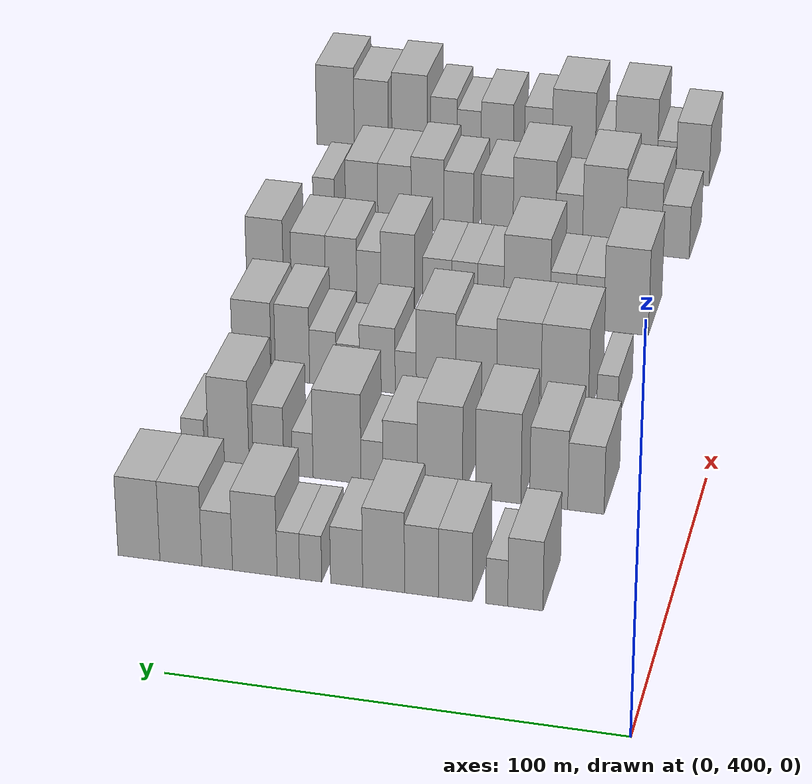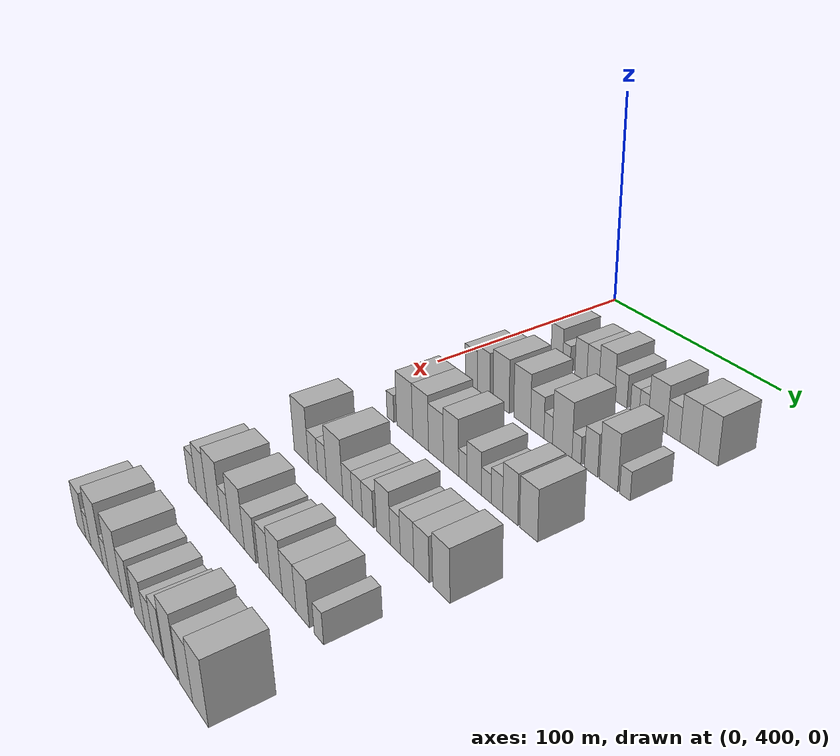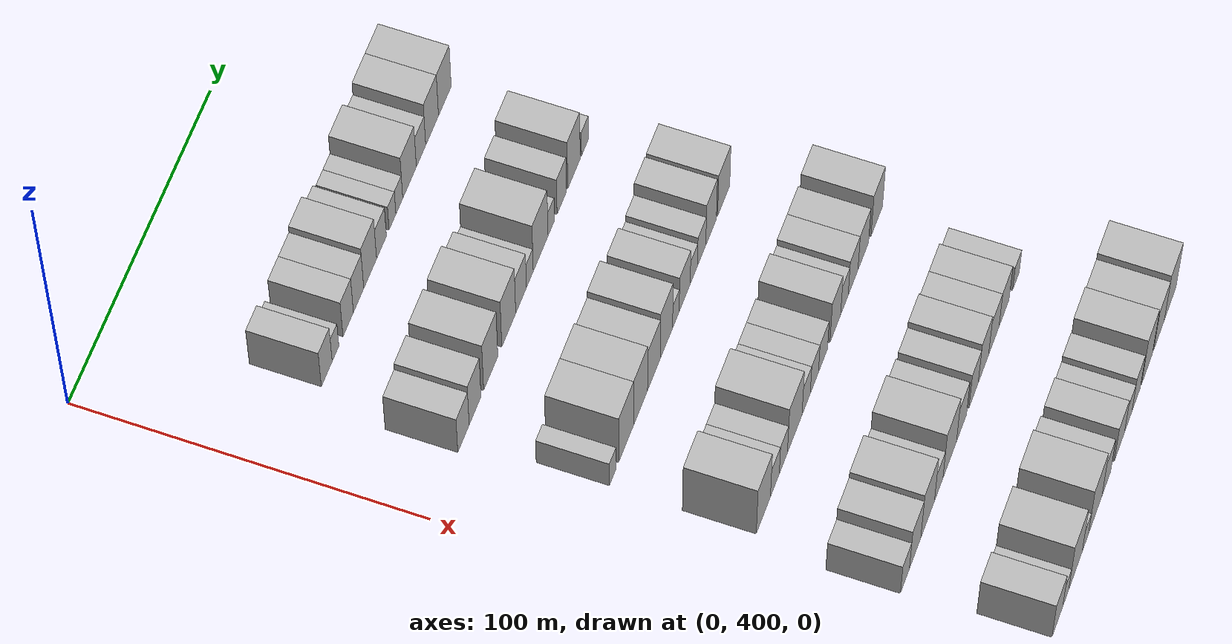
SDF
<sdf version="1.6">
 <world name="default">
  <model name="building_108">
   <static>1</static>
   <pose>50.0000 430.3907 0 0.000000 0.000000 0.000000</pose>
   <link name="link">
    <pose>0 0 9.00 0 0 0</pose>
    <collision name="collision"><geometry><box><size>20.0000 7.8006 18.0000</size></box></geometry></collision>
    <visual name="visual">
     <cast_shadows>0</cast_shadows>
     <geometry><box><size>20.0000 7.8006 18.0000</size></box></geometry>
     <material>
      <script>
       <uri>model://HANNAS_wall/materials/scripts</uri>
       <uri>model://HANNAS_wall/materials/textures</uri>
       <name>vrc/HANNAS_wall</name>
      </script>
     </material>
    </visual>
   </link>
  </model>
  <model name="building_109">
   <static>1</static>
   <pose>50.0000 436.7287 0 0.000000 0.000000 0.000000</pose>
   <link name="link">
    <pose>0 0 6.00 0 0 0</pose>
    <collision name="collision"><geometry><box><size>20.0000 4.8754 12.0000</size></box></geometry></collision>
    <visual name="visual">
     <cast_shadows>0</cast_shadows>
     <geometry><box><size>20.0000 4.8754 12.0000</size></box></geometry>
     <material>
      <script>
       <uri>model://HANNAS_wall/materials/scripts</uri>
       <uri>model://HANNAS_wall/materials/textures</uri>
       <name>vrc/HANNAS_wall</name>
      </script>
     </material>
    </visual>
   </link>
  </model>
  <model name="building_110">
   <static>1</static>
   <pose>50.0000 445.9561 0 0.000000 0.000000 0.000000</pose>
   <link name="link">
    <pose>0 0 9.00 0 0 0</pose>
    <collision name="collision"><geometry><box><size>20.0000 7.5793 18.0000</size></box></geometry></collision>
    <visual name="visual">
     <cast_shadows>0</cast_shadows>
     <geometry><box><size>20.0000 7.5793 18.0000</size></box></geometry>
     <material>
      <script>
       <uri>model://HANNAS_wall/materials/scripts</uri>
       <uri>model://HANNAS_wall/materials/textures</uri>
       <name>vrc/HANNAS_wall</name>
      </script>
     </material>
    </visual>
   </link>
  </model>
  <model name="building_111">
   <static>1</static>
   <pose>50.0000 453.5369 0 0.000000 0.000000 0.000000</pose>
   <link name="link">
    <pose>0 0 9.00 0 0 0</pose>
    <collision name="collision"><geometry><box><size>20.0000 7.5823 18.0000</size></box></geometry></collision>
    <visual name="visual">
     <cast_shadows>0</cast_shadows>
     <geometry><box><size>20.0000 7.5823 18.0000</size></box></geometry>
     <material>
      <script>
       <uri>model://HANNAS_wall/materials/scripts</uri>
       <uri>model://HANNAS_wall/materials/textures</uri>
       <name>vrc/HANNAS_wall</name>
      </script>
     </material>
    </visual>
   </link>
  </model>
  <model name="building_112">
   <static>1</static>
   <pose>50.0000 462.0447 0 0.000000 0.000000 0.000000</pose>
   <link name="link">
    <pose>0 0 10.50 0 0 0</pose>
    <collision name="collision"><geometry><box><size>20.0000 9.4333 21.0000</size></box></geometry></collision>
    <visual name="visual">
     <cast_shadows>0</cast_shadows>
     <geometry><box><size>20.0000 9.4333 21.0000</size></box></geometry>
     <material>
      <script>
       <uri>model://HANNAS_wall/materials/scripts</uri>
       <uri>model://HANNAS_wall/materials/textures</uri>
       <name>vrc/HANNAS_wall</name>
      </script>
     </material>
    </visual>
   </link>
  </model>
  <model name="building_113">
   <static>1</static>
   <pose>50.0000 470.3872 0 0.000000 0.000000 0.000000</pose>
   <link name="link">
    <pose>0 0 7.50 0 0 0</pose>
    <collision name="collision"><geometry><box><size>20.0000 7.2516 15.0000</size></box></geometry></collision>
    <visual name="visual">
     <cast_shadows>0</cast_shadows>
     <geometry><box><size>20.0000 7.2516 15.0000</size></box></geometry>
     <material>
      <script>
       <uri>model://HANNAS_wall/materials/scripts</uri>
       <uri>model://HANNAS_wall/materials/textures</uri>
       <name>vrc/HANNAS_wall</name>
      </script>
     </material>
    </visual>
   </link>
  </model>
  <model name="building_114">
   <static>1</static>
   <pose>50.0000 478.5228 0 0.000000 0.000000 0.000000</pose>
   <link name="link">
    <pose>0 0 6.00 0 0 0</pose>
    <collision name="collision"><geometry><box><size>20.0000 5.0196 12.0000</size></box></geometry></collision>
    <visual name="visual">
     <cast_shadows>0</cast_shadows>
     <geometry><box><size>20.0000 5.0196 12.0000</size></box></geometry>
     <material>
      <script>
       <uri>model://HANNAS_wall/materials/scripts</uri>
       <uri>model://HANNAS_wall/materials/textures</uri>
       <name>vrc/HANNAS_wall</name>
      </script>
     </material>
    </visual>
   </link>
  </model>
  <model name="building_115">
   <static>1</static>
   <pose>50.0000 483.6006 0 0.000000 0.000000 0.000000</pose>
   <link name="link">
    <pose>0 0 6.00 0 0 0</pose>
    <collision name="collision"><geometry><box><size>20.0000 5.1360 12.0000</size></box></geometry></collision>
    <visual name="visual">
     <cast_shadows>0</cast_shadows>
     <geometry><box><size>20.0000 5.1360 12.0000</size></box></geometry>
     <material>
      <script>
       <uri>model://HANNAS_wall/materials/scripts</uri>
       <uri>model://HANNAS_wall/materials/textures</uri>
       <name>vrc/HANNAS_wall</name>
      </script>
     </material>
    </visual>
   </link>
  </model>
  <model name="building_116">
   <static>1</static>
   <pose>50.0000 491.2625 0 0.000000 0.000000 0.000000</pose>
   <link name="link">
    <pose>0 0 10.50 0 0 0</pose>
    <collision name="collision"><geometry><box><size>20.0000 10.1878 21.0000</size></box></geometry></collision>
    <visual name="visual">
     <cast_shadows>0</cast_shadows>
     <geometry><box><size>20.0000 10.1878 21.0000</size></box></geometry>
     <material>
      <script>
       <uri>model://HANNAS_wall/materials/scripts</uri>
       <uri>model://HANNAS_wall/materials/textures</uri>
       <name>vrc/HANNAS_wall</name>
      </script>
     </material>
    </visual>
   </link>
  </model>
  <model name="building_117">
   <static>1</static>
   <pose>50.0000 499.8749 0 0.000000 0.000000 0.000000</pose>
   <link name="link">
    <pose>0 0 7.50 0 0 0</pose>
    <collision name="collision"><geometry><box><size>20.0000 7.0372 15.0000</size></box></geometry></collision>
    <visual name="visual">
     <cast_shadows>0</cast_shadows>
     <geometry><box><size>20.0000 7.0372 15.0000</size></box></geometry>
     <material>
      <script>
       <uri>model://HANNAS_wall/materials/scripts</uri>
       <uri>model://HANNAS_wall/materials/textures</uri>
       <name>vrc/HANNAS_wall</name>
      </script>
     </material>
    </visual>
   </link>
  </model>
  <model name="building_118">
   <static>1</static>
   <pose>50.0000 508.2300 0 0.000000 0.000000 0.000000</pose>
   <link name="link">
    <pose>0 0 10.50 0 0 0</pose>
    <collision name="collision"><geometry><box><size>20.0000 9.6730 21.0000</size></box></geometry></collision>
    <visual name="visual">
     <cast_shadows>0</cast_shadows>
     <geometry><box><size>20.0000 9.6730 21.0000</size></box></geometry>
     <material>
      <script>
       <uri>model://HANNAS_wall/materials/scripts</uri>
       <uri>model://HANNAS_wall/materials/textures</uri>
       <name>vrc/HANNAS_wall</name>
      </script>
     </material>
    </visual>
   </link>
  </model>
  <model name="building_119">
   <static>1</static>
   <pose>50.0000 517.9013 0 0.000000 0.000000 0.000000</pose>
   <link name="link">
    <pose>0 0 10.50 0 0 0</pose>
    <collision name="collision"><geometry><box><size>20.0000 9.6695 21.0000</size></box></geometry></collision>
    <visual name="visual">
     <cast_shadows>0</cast_shadows>
     <geometry><box><size>20.0000 9.6695 21.0000</size></box></geometry>
     <material>
      <script>
       <uri>model://HANNAS_wall/materials/scripts</uri>
       <uri>model://HANNAS_wall/materials/textures</uri>
       <name>vrc/HANNAS_wall</name>
      </script>
     </material>
    </visual>
   </link>
  </model>
  <model name="building_246">
   <static>1</static>
   <pose>90.0000 424.5598 0 0.000000 0.000000 0.000000</pose>
   <link name="link">
    <pose>0 0 9.00 0 0 0</pose>
    <collision name="collision"><geometry><box><size>20.0000 8.3779 18.0000</size></box></geometry></collision>
    <visual name="visual">
     <cast_shadows>0</cast_shadows>
     <geometry><box><size>20.0000 8.3779 18.0000</size></box></geometry>
     <material>
      <script>
       <uri>model://HANNAS_wall/materials/scripts</uri>
       <uri>model://HANNAS_wall/materials/textures</uri>
       <name>vrc/HANNAS_wall</name>
      </script>
     </material>
    </visual>
   </link>
  </model>
  <model name="building_247">
   <static>1</static>
   <pose>90.0000 433.1530 0 0.000000 0.000000 0.000000</pose>
   <link name="link">
    <pose>0 0 10.50 0 0 0</pose>
    <collision name="collision"><geometry><box><size>20.0000 8.8085 21.0000</size></box></geometry></collision>
    <visual name="visual">
     <cast_shadows>0</cast_shadows>
     <geometry><box><size>20.0000 8.8085 21.0000</size></box></geometry>
     <material>
      <script>
       <uri>model://HANNAS_wall/materials/scripts</uri>
       <uri>model://HANNAS_wall/materials/textures</uri>
       <name>vrc/HANNAS_wall</name>
      </script>
     </material>
    </visual>
   </link>
  </model>
  <model name="building_248">
   <static>1</static>
   <pose>90.0000 444.8565 0 0.000000 0.000000 0.000000</pose>
   <link name="link">
    <pose>0 0 12.00 0 0 0</pose>
    <collision name="collision"><geometry><box><size>20.0000 10.5984 24.0000</size></box></geometry></collision>
    <visual name="visual">
     <cast_shadows>0</cast_shadows>
     <geometry><box><size>20.0000 10.5984 24.0000</size></box></geometry>
     <material>
      <script>
       <uri>model://HANNAS_wall/materials/scripts</uri>
       <uri>model://HANNAS_wall/materials/textures</uri>
       <name>vrc/HANNAS_wall</name>
      </script>
     </material>
    </visual>
   </link>
  </model>
  <model name="building_249">
   <static>1</static>
   <pose>90.0000 458.4073 0 0.000000 0.000000 0.000000</pose>
   <link name="link">
    <pose>0 0 12.00 0 0 0</pose>
    <collision name="collision"><geometry><box><size>20.0000 10.5032 24.0000</size></box></geometry></collision>
    <visual name="visual">
     <cast_shadows>0</cast_shadows>
     <geometry><box><size>20.0000 10.5032 24.0000</size></box></geometry>
     <material>
      <script>
       <uri>model://HANNAS_wall/materials/scripts</uri>
       <uri>model://HANNAS_wall/materials/textures</uri>
       <name>vrc/HANNAS_wall</name>
      </script>
     </material>
    </visual>
   </link>
  </model>
  <model name="building_250">
   <static>1</static>
   <pose>90.0000 467.7437 0 0.000000 0.000000 0.000000</pose>
   <link name="link">
    <pose>0 0 9.00 0 0 0</pose>
    <collision name="collision"><geometry><box><size>20.0000 8.1696 18.0000</size></box></geometry></collision>
    <visual name="visual">
     <cast_shadows>0</cast_shadows>
     <geometry><box><size>20.0000 8.1696 18.0000</size></box></geometry>
     <material>
      <script>
       <uri>model://HANNAS_wall/materials/scripts</uri>
       <uri>model://HANNAS_wall/materials/textures</uri>
       <name>vrc/HANNAS_wall</name>
      </script>
     </material>
    </visual>
   </link>
  </model>
  <model name="building_251">
   <static>1</static>
   <pose>90.0000 474.4030 0 0.000000 0.000000 0.000000</pose>
   <link name="link">
    <pose>0 0 6.00 0 0 0</pose>
    <collision name="collision"><geometry><box><size>20.0000 5.1491 12.0000</size></box></geometry></collision>
    <visual name="visual">
     <cast_shadows>0</cast_shadows>
     <geometry><box><size>20.0000 5.1491 12.0000</size></box></geometry>
     <material>
      <script>
       <uri>model://HANNAS_wall/materials/scripts</uri>
       <uri>model://HANNAS_wall/materials/textures</uri>
       <name>vrc/HANNAS_wall</name>
      </script>
     </material>
    </visual>
   </link>
  </model>
  <model name="building_252">
   <static>1</static>
   <pose>90.0000 482.6559 0 0.000000 0.000000 0.000000</pose>
   <link name="link">
    <pose>0 0 12.00 0 0 0</pose>
    <collision name="collision"><geometry><box><size>20.0000 11.3567 24.0000</size></box></geometry></collision>
    <visual name="visual">
     <cast_shadows>0</cast_shadows>
     <geometry><box><size>20.0000 11.3567 24.0000</size></box></geometry>
     <material>
      <script>
       <uri>model://HANNAS_wall/materials/scripts</uri>
       <uri>model://HANNAS_wall/materials/textures</uri>
       <name>vrc/HANNAS_wall</name>
      </script>
     </material>
    </visual>
   </link>
  </model>
  <model name="building_253">
   <static>1</static>
   <pose>90.0000 490.8058 0 0.000000 0.000000 0.000000</pose>
   <link name="link">
    <pose>0 0 6.00 0 0 0</pose>
    <collision name="collision"><geometry><box><size>20.0000 4.9433 12.0000</size></box></geometry></collision>
    <visual name="visual">
     <cast_shadows>0</cast_shadows>
     <geometry><box><size>20.0000 4.9433 12.0000</size></box></geometry>
     <material>
      <script>
       <uri>model://HANNAS_wall/materials/scripts</uri>
       <uri>model://HANNAS_wall/materials/textures</uri>
       <name>vrc/HANNAS_wall</name>
      </script>
     </material>
    </visual>
   </link>
  </model>
  <model name="building_254">
   <static>1</static>
   <pose>90.0000 498.9172 0 0.000000 0.000000 0.000000</pose>
   <link name="link">
    <pose>0 0 9.00 0 0 0</pose>
    <collision name="collision"><geometry><box><size>20.0000 7.2795 18.0000</size></box></geometry></collision>
    <visual name="visual">
     <cast_shadows>0</cast_shadows>
     <geometry><box><size>20.0000 7.2795 18.0000</size></box></geometry>
     <material>
      <script>
       <uri>model://HANNAS_wall/materials/scripts</uri>
       <uri>model://HANNAS_wall/materials/textures</uri>
       <name>vrc/HANNAS_wall</name>
      </script>
     </material>
    </visual>
   </link>
  </model>
  <model name="building_255">
   <static>1</static>
   <pose>90.0000 508.4036 0 0.000000 0.000000 0.000000</pose>
   <link name="link">
    <pose>0 0 12.00 0 0 0</pose>
    <collision name="collision"><geometry><box><size>20.0000 9.6932 24.0000</size></box></geometry></collision>
    <visual name="visual">
     <cast_shadows>0</cast_shadows>
     <geometry><box><size>20.0000 9.6932 24.0000</size></box></geometry>
     <material>
      <script>
       <uri>model://HANNAS_wall/materials/scripts</uri>
       <uri>model://HANNAS_wall/materials/textures</uri>
       <name>vrc/HANNAS_wall</name>
      </script>
     </material>
    </visual>
   </link>
  </model>
  <model name="building_256">
   <static>1</static>
   <pose>90.0000 516.9651 0 0.000000 0.000000 0.000000</pose>
   <link name="link">
    <pose>0 0 6.00 0 0 0</pose>
    <collision name="collision"><geometry><box><size>20.0000 5.4298 12.0000</size></box></geometry></collision>
    <visual name="visual">
     <cast_shadows>0</cast_shadows>
     <geometry><box><size>20.0000 5.4298 12.0000</size></box></geometry>
     <material>
      <script>
       <uri>model://HANNAS_wall/materials/scripts</uri>
       <uri>model://HANNAS_wall/materials/textures</uri>
       <name>vrc/HANNAS_wall</name>
      </script>
     </material>
    </visual>
   </link>
  </model>
  <model name="building_387">
   <static>1</static>
   <pose>130.0000 426.9914 0 0.000000 0.000000 0.000000</pose>
   <link name="link">
    <pose>0 0 6.00 0 0 0</pose>
    <collision name="collision"><geometry><box><size>20.0000 5.0914 12.0000</size></box></geometry></collision>
    <visual name="visual">
     <cast_shadows>0</cast_shadows>
     <geometry><box><size>20.0000 5.0914 12.0000</size></box></geometry>
     <material>
      <script>
       <uri>model://HANNAS_wall/materials/scripts</uri>
       <uri>model://HANNAS_wall/materials/textures</uri>
       <name>vrc/HANNAS_wall</name>
      </script>
     </material>
    </visual>
   </link>
  </model>
  <model name="building_388">
   <static>1</static>
   <pose>130.0000 437.2520 0 0.000000 0.000000 0.000000</pose>
   <link name="link">
    <pose>0 0 12.00 0 0 0</pose>
    <collision name="collision"><geometry><box><size>20.0000 11.4298 24.0000</size></box></geometry></collision>
    <visual name="visual">
     <cast_shadows>0</cast_shadows>
     <geometry><box><size>20.0000 11.4298 24.0000</size></box></geometry>
     <material>
      <script>
       <uri>model://HANNAS_wall/materials/scripts</uri>
       <uri>model://HANNAS_wall/materials/textures</uri>
       <name>vrc/HANNAS_wall</name>
      </script>
     </material>
    </visual>
   </link>
  </model>
  <model name="building_389">
   <static>1</static>
   <pose>130.0000 448.3407 0 0.000000 0.000000 0.000000</pose>
   <link name="link">
    <pose>0 0 12.00 0 0 0</pose>
    <collision name="collision"><geometry><box><size>20.0000 10.7475 24.0000</size></box></geometry></collision>
    <visual name="visual">
     <cast_shadows>0</cast_shadows>
     <geometry><box><size>20.0000 10.7475 24.0000</size></box></geometry>
     <material>
      <script>
       <uri>model://HANNAS_wall/materials/scripts</uri>
       <uri>model://HANNAS_wall/materials/textures</uri>
       <name>vrc/HANNAS_wall</name>
      </script>
     </material>
    </visual>
   </link>
  </model>
  <model name="building_390">
   <static>1</static>
   <pose>130.0000 458.6576 0 0.000000 0.000000 0.000000</pose>
   <link name="link">
    <pose>0 0 10.50 0 0 0</pose>
    <collision name="collision"><geometry><box><size>20.0000 9.8865 21.0000</size></box></geometry></collision>
    <visual name="visual">
     <cast_shadows>0</cast_shadows>
     <geometry><box><size>20.0000 9.8865 21.0000</size></box></geometry>
     <material>
      <script>
       <uri>model://HANNAS_wall/materials/scripts</uri>
       <uri>model://HANNAS_wall/materials/textures</uri>
       <name>vrc/HANNAS_wall</name>
      </script>
     </material>
    </visual>
   </link>
  </model>
  <model name="building_391">
   <static>1</static>
   <pose>130.0000 468.4294 0 0.000000 0.000000 0.000000</pose>
   <link name="link">
    <pose>0 0 12.00 0 0 0</pose>
    <collision name="collision"><geometry><box><size>20.0000 9.6571 24.0000</size></box></geometry></collision>
    <visual name="visual">
     <cast_shadows>0</cast_shadows>
     <geometry><box><size>20.0000 9.6571 24.0000</size></box></geometry>
     <material>
      <script>
       <uri>model://HANNAS_wall/materials/scripts</uri>
       <uri>model://HANNAS_wall/materials/textures</uri>
       <name>vrc/HANNAS_wall</name>
      </script>
     </material>
    </visual>
   </link>
  </model>
  <model name="building_392">
   <static>1</static>
   <pose>130.0000 475.8567 0 0.000000 0.000000 0.000000</pose>
   <link name="link">
    <pose>0 0 6.00 0 0 0</pose>
    <collision name="collision"><geometry><box><size>20.0000 5.1975 12.0000</size></box></geometry></collision>
    <visual name="visual">
     <cast_shadows>0</cast_shadows>
     <geometry><box><size>20.0000 5.1975 12.0000</size></box></geometry>
     <material>
      <script>
       <uri>model://HANNAS_wall/materials/scripts</uri>
       <uri>model://HANNAS_wall/materials/textures</uri>
       <name>vrc/HANNAS_wall</name>
      </script>
     </material>
    </visual>
   </link>
  </model>
  <model name="building_393">
   <static>1</static>
   <pose>130.0000 482.8201 0 0.000000 0.000000 0.000000</pose>
   <link name="link">
    <pose>0 0 9.00 0 0 0</pose>
    <collision name="collision"><geometry><box><size>20.0000 8.7292 18.0000</size></box></geometry></collision>
    <visual name="visual">
     <cast_shadows>0</cast_shadows>
     <geometry><box><size>20.0000 8.7292 18.0000</size></box></geometry>
     <material>
      <script>
       <uri>model://HANNAS_wall/materials/scripts</uri>
       <uri>model://HANNAS_wall/materials/textures</uri>
       <name>vrc/HANNAS_wall</name>
      </script>
     </material>
    </visual>
   </link>
  </model>
  <model name="building_394">
   <static>1</static>
   <pose>130.0000 490.0511 0 0.000000 0.000000 0.000000</pose>
   <link name="link">
    <pose>0 0 6.00 0 0 0</pose>
    <collision name="collision"><geometry><box><size>20.0000 5.7328 12.0000</size></box></geometry></collision>
    <visual name="visual">
     <cast_shadows>0</cast_shadows>
     <geometry><box><size>20.0000 5.7328 12.0000</size></box></geometry>
     <material>
      <script>
       <uri>model://HANNAS_wall/materials/scripts</uri>
       <uri>model://HANNAS_wall/materials/textures</uri>
       <name>vrc/HANNAS_wall</name>
      </script>
     </material>
    </visual>
   </link>
  </model>
  <model name="building_395">
   <static>1</static>
   <pose>130.0000 496.2345 0 0.000000 0.000000 0.000000</pose>
   <link name="link">
    <pose>0 0 7.50 0 0 0</pose>
    <collision name="collision"><geometry><box><size>20.0000 6.6340 15.0000</size></box></geometry></collision>
    <visual name="visual">
     <cast_shadows>0</cast_shadows>
     <geometry><box><size>20.0000 6.6340 15.0000</size></box></geometry>
     <material>
      <script>
       <uri>model://HANNAS_wall/materials/scripts</uri>
       <uri>model://HANNAS_wall/materials/textures</uri>
       <name>vrc/HANNAS_wall</name>
      </script>
     </material>
    </visual>
   </link>
  </model>
  <model name="building_396">
   <static>1</static>
   <pose>130.0000 503.7884 0 0.000000 0.000000 0.000000</pose>
   <link name="link">
    <pose>0 0 10.50 0 0 0</pose>
    <collision name="collision"><geometry><box><size>20.0000 8.4738 21.0000</size></box></geometry></collision>
    <visual name="visual">
     <cast_shadows>0</cast_shadows>
     <geometry><box><size>20.0000 8.4738 21.0000</size></box></geometry>
     <material>
      <script>
       <uri>model://HANNAS_wall/materials/scripts</uri>
       <uri>model://HANNAS_wall/materials/textures</uri>
       <name>vrc/HANNAS_wall</name>
      </script>
     </material>
    </visual>
   </link>
  </model>
  <model name="building_397">
   <static>1</static>
   <pose>130.0000 513.8648 0 0.000000 0.000000 0.000000</pose>
   <link name="link">
    <pose>0 0 10.50 0 0 0</pose>
    <collision name="collision"><geometry><box><size>20.0000 9.6791 21.0000</size></box></geometry></collision>
    <visual name="visual">
     <cast_shadows>0</cast_shadows>
     <geometry><box><size>20.0000 9.6791 21.0000</size></box></geometry>
     <material>
      <script>
       <uri>model://HANNAS_wall/materials/scripts</uri>
       <uri>model://HANNAS_wall/materials/textures</uri>
       <name>vrc/HANNAS_wall</name>
      </script>
     </material>
    </visual>
   </link>
  </model>
  <model name="building_525">
   <static>1</static>
   <pose>170.0000 429.5735 0 0.000000 0.000000 0.000000</pose>
   <link name="link">
    <pose>0 0 12.00 0 0 0</pose>
    <collision name="collision"><geometry><box><size>20.0000 11.1415 24.0000</size></box></geometry></collision>
    <visual name="visual">
     <cast_shadows>0</cast_shadows>
     <geometry><box><size>20.0000 11.1415 24.0000</size></box></geometry>
     <material>
      <script>
       <uri>model://HANNAS_wall/materials/scripts</uri>
       <uri>model://HANNAS_wall/materials/textures</uri>
       <name>vrc/HANNAS_wall</name>
      </script>
     </material>
    </visual>
   </link>
  </model>
  <model name="building_526">
   <static>1</static>
   <pose>170.0000 438.6558 0 0.000000 0.000000 0.000000</pose>
   <link name="link">
    <pose>0 0 7.50 0 0 0</pose>
    <collision name="collision"><geometry><box><size>20.0000 7.0231 15.0000</size></box></geometry></collision>
    <visual name="visual">
     <cast_shadows>0</cast_shadows>
     <geometry><box><size>20.0000 7.0231 15.0000</size></box></geometry>
     <material>
      <script>
       <uri>model://HANNAS_wall/materials/scripts</uri>
       <uri>model://HANNAS_wall/materials/textures</uri>
       <name>vrc/HANNAS_wall</name>
      </script>
     </material>
    </visual>
   </link>
  </model>
  <model name="building_527">
   <static>1</static>
   <pose>170.0000 445.3950 0 0.000000 0.000000 0.000000</pose>
   <link name="link">
    <pose>0 0 7.50 0 0 0</pose>
    <collision name="collision"><geometry><box><size>20.0000 6.4554 15.0000</size></box></geometry></collision>
    <visual name="visual">
     <cast_shadows>0</cast_shadows>
     <geometry><box><size>20.0000 6.4554 15.0000</size></box></geometry>
     <material>
      <script>
       <uri>model://HANNAS_wall/materials/scripts</uri>
       <uri>model://HANNAS_wall/materials/textures</uri>
       <name>vrc/HANNAS_wall</name>
      </script>
     </material>
    </visual>
   </link>
  </model>
  <model name="building_528">
   <static>1</static>
   <pose>170.0000 454.4798 0 0.000000 0.000000 0.000000</pose>
   <link name="link">
    <pose>0 0 12.00 0 0 0</pose>
    <collision name="collision"><geometry><box><size>20.0000 11.7142 24.0000</size></box></geometry></collision>
    <visual name="visual">
     <cast_shadows>0</cast_shadows>
     <geometry><box><size>20.0000 11.7142 24.0000</size></box></geometry>
     <material>
      <script>
       <uri>model://HANNAS_wall/materials/scripts</uri>
       <uri>model://HANNAS_wall/materials/textures</uri>
       <name>vrc/HANNAS_wall</name>
      </script>
     </material>
    </visual>
   </link>
  </model>
  <model name="building_529">
   <static>1</static>
   <pose>170.0000 463.6392 0 0.000000 0.000000 0.000000</pose>
   <link name="link">
    <pose>0 0 7.50 0 0 0</pose>
    <collision name="collision"><geometry><box><size>20.0000 6.6045 15.0000</size></box></geometry></collision>
    <visual name="visual">
     <cast_shadows>0</cast_shadows>
     <geometry><box><size>20.0000 6.6045 15.0000</size></box></geometry>
     <material>
      <script>
       <uri>model://HANNAS_wall/materials/scripts</uri>
       <uri>model://HANNAS_wall/materials/textures</uri>
       <name>vrc/HANNAS_wall</name>
      </script>
     </material>
    </visual>
   </link>
  </model>
  <model name="building_530">
   <static>1</static>
   <pose>170.0000 470.2667 0 0.000000 0.000000 0.000000</pose>
   <link name="link">
    <pose>0 0 7.50 0 0 0</pose>
    <collision name="collision"><geometry><box><size>20.0000 6.6507 15.0000</size></box></geometry></collision>
    <visual name="visual">
     <cast_shadows>0</cast_shadows>
     <geometry><box><size>20.0000 6.6507 15.0000</size></box></geometry>
     <material>
      <script>
       <uri>model://HANNAS_wall/materials/scripts</uri>
       <uri>model://HANNAS_wall/materials/textures</uri>
       <name>vrc/HANNAS_wall</name>
      </script>
     </material>
    </visual>
   </link>
  </model>
  <model name="building_531">
   <static>1</static>
   <pose>170.0000 477.2610 0 0.000000 0.000000 0.000000</pose>
   <link name="link">
    <pose>0 0 7.50 0 0 0</pose>
    <collision name="collision"><geometry><box><size>20.0000 7.3378 15.0000</size></box></geometry></collision>
    <visual name="visual">
     <cast_shadows>0</cast_shadows>
     <geometry><box><size>20.0000 7.3378 15.0000</size></box></geometry>
     <material>
      <script>
       <uri>model://HANNAS_wall/materials/scripts</uri>
       <uri>model://HANNAS_wall/materials/textures</uri>
       <name>vrc/HANNAS_wall</name>
      </script>
     </material>
    </visual>
   </link>
  </model>
  <model name="building_532">
   <static>1</static>
   <pose>170.0000 487.2739 0 0.000000 0.000000 0.000000</pose>
   <link name="link">
    <pose>0 0 10.50 0 0 0</pose>
    <collision name="collision"><geometry><box><size>20.0000 8.6882 21.0000</size></box></geometry></collision>
    <visual name="visual">
     <cast_shadows>0</cast_shadows>
     <geometry><box><size>20.0000 8.6882 21.0000</size></box></geometry>
     <material>
      <script>
       <uri>model://HANNAS_wall/materials/scripts</uri>
       <uri>model://HANNAS_wall/materials/textures</uri>
       <name>vrc/HANNAS_wall</name>
      </script>
     </material>
    </visual>
   </link>
  </model>
  <model name="building_533">
   <static>1</static>
   <pose>170.0000 494.7062 0 0.000000 0.000000 0.000000</pose>
   <link name="link">
    <pose>0 0 7.50 0 0 0</pose>
    <collision name="collision"><geometry><box><size>20.0000 6.1763 15.0000</size></box></geometry></collision>
    <visual name="visual">
     <cast_shadows>0</cast_shadows>
     <geometry><box><size>20.0000 6.1763 15.0000</size></box></geometry>
     <material>
      <script>
       <uri>model://HANNAS_wall/materials/scripts</uri>
       <uri>model://HANNAS_wall/materials/textures</uri>
       <name>vrc/HANNAS_wall</name>
      </script>
     </material>
    </visual>
   </link>
  </model>
  <model name="building_534">
   <static>1</static>
   <pose>170.0000 501.8269 0 0.000000 0.000000 0.000000</pose>
   <link name="link">
    <pose>0 0 9.00 0 0 0</pose>
    <collision name="collision"><geometry><box><size>20.0000 8.0651 18.0000</size></box></geometry></collision>
    <visual name="visual">
     <cast_shadows>0</cast_shadows>
     <geometry><box><size>20.0000 8.0651 18.0000</size></box></geometry>
     <material>
      <script>
       <uri>model://HANNAS_wall/materials/scripts</uri>
       <uri>model://HANNAS_wall/materials/textures</uri>
       <name>vrc/HANNAS_wall</name>
      </script>
     </material>
    </visual>
   </link>
  </model>
  <model name="building_535">
   <static>1</static>
   <pose>170.0000 510.2862 0 0.000000 0.000000 0.000000</pose>
   <link name="link">
    <pose>0 0 9.00 0 0 0</pose>
    <collision name="collision"><geometry><box><size>20.0000 8.8534 18.0000</size></box></geometry></collision>
    <visual name="visual">
     <cast_shadows>0</cast_shadows>
     <geometry><box><size>20.0000 8.8534 18.0000</size></box></geometry>
     <material>
      <script>
       <uri>model://HANNAS_wall/materials/scripts</uri>
       <uri>model://HANNAS_wall/materials/textures</uri>
       <name>vrc/HANNAS_wall</name>
      </script>
     </material>
    </visual>
   </link>
  </model>
  <model name="building_536">
   <static>1</static>
   <pose>170.0000 521.4826 0 0.000000 0.000000 0.000000</pose>
   <link name="link">
    <pose>0 0 10.50 0 0 0</pose>
    <collision name="collision"><geometry><box><size>20.0000 9.5393 21.0000</size></box></geometry></collision>
    <visual name="visual">
     <cast_shadows>0</cast_shadows>
     <geometry><box><size>20.0000 9.5393 21.0000</size></box></geometry>
     <material>
      <script>
       <uri>model://HANNAS_wall/materials/scripts</uri>
       <uri>model://HANNAS_wall/materials/textures</uri>
       <name>vrc/HANNAS_wall</name>
      </script>
     </material>
    </visual>
   </link>
  </model>
  <model name="building_668">
   <static>1</static>
   <pose>210.0000 423.9400 0 0.000000 0.000000 0.000000</pose>
   <link name="link">
    <pose>0 0 7.50 0 0 0</pose>
    <collision name="collision"><geometry><box><size>20.0000 7.2280 15.0000</size></box></geometry></collision>
    <visual name="visual">
     <cast_shadows>0</cast_shadows>
     <geometry><box><size>20.0000 7.2280 15.0000</size></box></geometry>
     <material>
      <script>
       <uri>model://HANNAS_wall/materials/scripts</uri>
       <uri>model://HANNAS_wall/materials/textures</uri>
       <name>vrc/HANNAS_wall</name>
      </script>
     </material>
    </visual>
   </link>
  </model>
  <model name="building_669">
   <static>1</static>
   <pose>210.0000 432.2000 0 0.000000 0.000000 0.000000</pose>
   <link name="link">
    <pose>0 0 10.50 0 0 0</pose>
    <collision name="collision"><geometry><box><size>20.0000 9.2919 21.0000</size></box></geometry></collision>
    <visual name="visual">
     <cast_shadows>0</cast_shadows>
     <geometry><box><size>20.0000 9.2919 21.0000</size></box></geometry>
     <material>
      <script>
       <uri>model://HANNAS_wall/materials/scripts</uri>
       <uri>model://HANNAS_wall/materials/textures</uri>
       <name>vrc/HANNAS_wall</name>
      </script>
     </material>
    </visual>
   </link>
  </model>
  <model name="building_670">
   <static>1</static>
   <pose>210.0000 442.4540 0 0.000000 0.000000 0.000000</pose>
   <link name="link">
    <pose>0 0 12.00 0 0 0</pose>
    <collision name="collision"><geometry><box><size>20.0000 11.2162 24.0000</size></box></geometry></collision>
    <visual name="visual">
     <cast_shadows>0</cast_shadows>
     <geometry><box><size>20.0000 11.2162 24.0000</size></box></geometry>
     <material>
      <script>
       <uri>model://HANNAS_wall/materials/scripts</uri>
       <uri>model://HANNAS_wall/materials/textures</uri>
       <name>vrc/HANNAS_wall</name>
      </script>
     </material>
    </visual>
   </link>
  </model>
  <model name="building_671">
   <static>1</static>
   <pose>210.0000 451.5662 0 0.000000 0.000000 0.000000</pose>
   <link name="link">
    <pose>0 0 7.50 0 0 0</pose>
    <collision name="collision"><geometry><box><size>20.0000 7.0082 15.0000</size></box></geometry></collision>
    <visual name="visual">
     <cast_shadows>0</cast_shadows>
     <geometry><box><size>20.0000 7.0082 15.0000</size></box></geometry>
     <material>
      <script>
       <uri>model://HANNAS_wall/materials/scripts</uri>
       <uri>model://HANNAS_wall/materials/textures</uri>
       <name>vrc/HANNAS_wall</name>
      </script>
     </material>
    </visual>
   </link>
  </model>
  <model name="building_672">
   <static>1</static>
   <pose>210.0000 460.6718 0 0.000000 0.000000 0.000000</pose>
   <link name="link">
    <pose>0 0 12.00 0 0 0</pose>
    <collision name="collision"><geometry><box><size>20.0000 11.2029 24.0000</size></box></geometry></collision>
    <visual name="visual">
     <cast_shadows>0</cast_shadows>
     <geometry><box><size>20.0000 11.2029 24.0000</size></box></geometry>
     <material>
      <script>
       <uri>model://HANNAS_wall/materials/scripts</uri>
       <uri>model://HANNAS_wall/materials/textures</uri>
       <name>vrc/HANNAS_wall</name>
      </script>
     </material>
    </visual>
   </link>
  </model>
  <model name="building_673">
   <static>1</static>
   <pose>210.0000 470.4964 0 0.000000 0.000000 0.000000</pose>
   <link name="link">
    <pose>0 0 9.00 0 0 0</pose>
    <collision name="collision"><geometry><box><size>20.0000 8.4462 18.0000</size></box></geometry></collision>
    <visual name="visual">
     <cast_shadows>0</cast_shadows>
     <geometry><box><size>20.0000 8.4462 18.0000</size></box></geometry>
     <material>
      <script>
       <uri>model://HANNAS_wall/materials/scripts</uri>
       <uri>model://HANNAS_wall/materials/textures</uri>
       <name>vrc/HANNAS_wall</name>
      </script>
     </material>
    </visual>
   </link>
  </model>
  <model name="building_674">
   <static>1</static>
   <pose>210.0000 480.5893 0 0.000000 0.000000 0.000000</pose>
   <link name="link">
    <pose>0 0 9.00 0 0 0</pose>
    <collision name="collision"><geometry><box><size>20.0000 7.7396 18.0000</size></box></geometry></collision>
    <visual name="visual">
     <cast_shadows>0</cast_shadows>
     <geometry><box><size>20.0000 7.7396 18.0000</size></box></geometry>
     <material>
      <script>
       <uri>model://HANNAS_wall/materials/scripts</uri>
       <uri>model://HANNAS_wall/materials/textures</uri>
       <name>vrc/HANNAS_wall</name>
      </script>
     </material>
    </visual>
   </link>
  </model>
  <model name="building_675">
   <static>1</static>
   <pose>210.0000 488.8304 0 0.000000 0.000000 0.000000</pose>
   <link name="link">
    <pose>0 0 10.50 0 0 0</pose>
    <collision name="collision"><geometry><box><size>20.0000 8.7427 21.0000</size></box></geometry></collision>
    <visual name="visual">
     <cast_shadows>0</cast_shadows>
     <geometry><box><size>20.0000 8.7427 21.0000</size></box></geometry>
     <material>
      <script>
       <uri>model://HANNAS_wall/materials/scripts</uri>
       <uri>model://HANNAS_wall/materials/textures</uri>
       <name>vrc/HANNAS_wall</name>
      </script>
     </material>
    </visual>
   </link>
  </model>
  <model name="building_676">
   <static>1</static>
   <pose>210.0000 497.6468 0 0.000000 0.000000 0.000000</pose>
   <link name="link">
    <pose>0 0 9.00 0 0 0</pose>
    <collision name="collision"><geometry><box><size>20.0000 8.8901 18.0000</size></box></geometry></collision>
    <visual name="visual">
     <cast_shadows>0</cast_shadows>
     <geometry><box><size>20.0000 8.8901 18.0000</size></box></geometry>
     <material>
      <script>
       <uri>model://HANNAS_wall/materials/scripts</uri>
       <uri>model://HANNAS_wall/materials/textures</uri>
       <name>vrc/HANNAS_wall</name>
      </script>
     </material>
    </visual>
   </link>
  </model>
  <model name="building_677">
   <static>1</static>
   <pose>210.0000 506.4070 0 0.000000 0.000000 0.000000</pose>
   <link name="link">
    <pose>0 0 9.00 0 0 0</pose>
    <collision name="collision"><geometry><box><size>20.0000 8.6303 18.0000</size></box></geometry></collision>
    <visual name="visual">
     <cast_shadows>0</cast_shadows>
     <geometry><box><size>20.0000 8.6303 18.0000</size></box></geometry>
     <material>
      <script>
       <uri>model://HANNAS_wall/materials/scripts</uri>
       <uri>model://HANNAS_wall/materials/textures</uri>
       <name>vrc/HANNAS_wall</name>
      </script>
     </material>
    </visual>
   </link>
  </model>
  <model name="building_678">
   <static>1</static>
   <pose>210.0000 516.5799 0 0.000000 0.000000 0.000000</pose>
   <link name="link">
    <pose>0 0 6.00 0 0 0</pose>
    <collision name="collision"><geometry><box><size>20.0000 5.7154 12.0000</size></box></geometry></collision>
    <visual name="visual">
     <cast_shadows>0</cast_shadows>
     <geometry><box><size>20.0000 5.7154 12.0000</size></box></geometry>
     <material>
      <script>
       <uri>model://HANNAS_wall/materials/scripts</uri>
       <uri>model://HANNAS_wall/materials/textures</uri>
       <name>vrc/HANNAS_wall</name>
      </script>
     </material>
    </visual>
   </link>
  </model>
  <model name="building_803">
   <static>1</static>
   <pose>250.0000 425.9520 0 0.000000 0.000000 0.000000</pose>
   <link name="link">
    <pose>0 0 9.00 0 0 0</pose>
    <collision name="collision"><geometry><box><size>20.0000 8.9223 18.0000</size></box></geometry></collision>
    <visual name="visual">
     <cast_shadows>0</cast_shadows>
     <geometry><box><size>20.0000 8.9223 18.0000</size></box></geometry>
     <material>
      <script>
       <uri>model://HANNAS_wall/materials/scripts</uri>
       <uri>model://HANNAS_wall/materials/textures</uri>
       <name>vrc/HANNAS_wall</name>
      </script>
     </material>
    </visual>
   </link>
  </model>
  <model name="building_804">
   <static>1</static>
   <pose>250.0000 432.9819 0 0.000000 0.000000 0.000000</pose>
   <link name="link">
    <pose>0 0 6.00 0 0 0</pose>
    <collision name="collision"><geometry><box><size>20.0000 5.1375 12.0000</size></box></geometry></collision>
    <visual name="visual">
     <cast_shadows>0</cast_shadows>
     <geometry><box><size>20.0000 5.1375 12.0000</size></box></geometry>
     <material>
      <script>
       <uri>model://HANNAS_wall/materials/scripts</uri>
       <uri>model://HANNAS_wall/materials/textures</uri>
       <name>vrc/HANNAS_wall</name>
      </script>
     </material>
    </visual>
   </link>
  </model>
  <model name="building_805">
   <static>1</static>
   <pose>250.0000 441.2443 0 0.000000 0.000000 0.000000</pose>
   <link name="link">
    <pose>0 0 12.00 0 0 0</pose>
    <collision name="collision"><geometry><box><size>20.0000 11.3872 24.0000</size></box></geometry></collision>
    <visual name="visual">
     <cast_shadows>0</cast_shadows>
     <geometry><box><size>20.0000 11.3872 24.0000</size></box></geometry>
     <material>
      <script>
       <uri>model://HANNAS_wall/materials/scripts</uri>
       <uri>model://HANNAS_wall/materials/textures</uri>
       <name>vrc/HANNAS_wall</name>
      </script>
     </material>
    </visual>
   </link>
  </model>
  <model name="building_806">
   <static>1</static>
   <pose>250.0000 449.6000 0 0.000000 0.000000 0.000000</pose>
   <link name="link">
    <pose>0 0 6.00 0 0 0</pose>
    <collision name="collision"><geometry><box><size>20.0000 5.3243 12.0000</size></box></geometry></collision>
    <visual name="visual">
     <cast_shadows>0</cast_shadows>
     <geometry><box><size>20.0000 5.3243 12.0000</size></box></geometry>
     <material>
      <script>
       <uri>model://HANNAS_wall/materials/scripts</uri>
       <uri>model://HANNAS_wall/materials/textures</uri>
       <name>vrc/HANNAS_wall</name>
      </script>
     </material>
    </visual>
   </link>
  </model>
  <model name="building_807">
   <static>1</static>
   <pose>250.0000 458.0847 0 0.000000 0.000000 0.000000</pose>
   <link name="link">
    <pose>0 0 12.00 0 0 0</pose>
    <collision name="collision"><geometry><box><size>20.0000 11.6451 24.0000</size></box></geometry></collision>
    <visual name="visual">
     <cast_shadows>0</cast_shadows>
     <geometry><box><size>20.0000 11.6451 24.0000</size></box></geometry>
     <material>
      <script>
       <uri>model://HANNAS_wall/materials/scripts</uri>
       <uri>model://HANNAS_wall/materials/textures</uri>
       <name>vrc/HANNAS_wall</name>
      </script>
     </material>
    </visual>
   </link>
  </model>
  <model name="building_808">
   <static>1</static>
   <pose>250.0000 467.6912 0 0.000000 0.000000 0.000000</pose>
   <link name="link">
    <pose>0 0 9.00 0 0 0</pose>
    <collision name="collision"><geometry><box><size>20.0000 7.5679 18.0000</size></box></geometry></collision>
    <visual name="visual">
     <cast_shadows>0</cast_shadows>
     <geometry><box><size>20.0000 7.5679 18.0000</size></box></geometry>
     <material>
      <script>
       <uri>model://HANNAS_wall/materials/scripts</uri>
       <uri>model://HANNAS_wall/materials/textures</uri>
       <name>vrc/HANNAS_wall</name>
      </script>
     </material>
    </visual>
   </link>
  </model>
  <model name="building_809">
   <static>1</static>
   <pose>250.0000 478.8758 0 0.000000 0.000000 0.000000</pose>
   <link name="link">
    <pose>0 0 9.00 0 0 0</pose>
    <collision name="collision"><geometry><box><size>20.0000 8.8011 18.0000</size></box></geometry></collision>
    <visual name="visual">
     <cast_shadows>0</cast_shadows>
     <geometry><box><size>20.0000 8.8011 18.0000</size></box></geometry>
     <material>
      <script>
       <uri>model://HANNAS_wall/materials/scripts</uri>
       <uri>model://HANNAS_wall/materials/textures</uri>
       <name>vrc/HANNAS_wall</name>
      </script>
     </material>
    </visual>
   </link>
  </model>
  <model name="building_810">
   <static>1</static>
   <pose>250.0000 486.5454 0 0.000000 0.000000 0.000000</pose>
   <link name="link">
    <pose>0 0 7.50 0 0 0</pose>
    <collision name="collision"><geometry><box><size>20.0000 6.5382 15.0000</size></box></geometry></collision>
    <visual name="visual">
     <cast_shadows>0</cast_shadows>
     <geometry><box><size>20.0000 6.5382 15.0000</size></box></geometry>
     <material>
      <script>
       <uri>model://HANNAS_wall/materials/scripts</uri>
       <uri>model://HANNAS_wall/materials/textures</uri>
       <name>vrc/HANNAS_wall</name>
      </script>
     </material>
    </visual>
   </link>
  </model>
  <model name="building_811">
   <static>1</static>
   <pose>250.0000 493.4842 0 0.000000 0.000000 0.000000</pose>
   <link name="link">
    <pose>0 0 9.00 0 0 0</pose>
    <collision name="collision"><geometry><box><size>20.0000 7.3394 18.0000</size></box></geometry></collision>
    <visual name="visual">
     <cast_shadows>0</cast_shadows>
     <geometry><box><size>20.0000 7.3394 18.0000</size></box></geometry>
     <material>
      <script>
       <uri>model://HANNAS_wall/materials/scripts</uri>
       <uri>model://HANNAS_wall/materials/textures</uri>
       <name>vrc/HANNAS_wall</name>
      </script>
     </material>
    </visual>
   </link>
  </model>
  <model name="building_812">
   <static>1</static>
   <pose>250.0000 503.0191 0 0.000000 0.000000 0.000000</pose>
   <link name="link">
    <pose>0 0 12.00 0 0 0</pose>
    <collision name="collision"><geometry><box><size>20.0000 9.7303 24.0000</size></box></geometry></collision>
    <visual name="visual">
     <cast_shadows>0</cast_shadows>
     <geometry><box><size>20.0000 9.7303 24.0000</size></box></geometry>
     <material>
      <script>
       <uri>model://HANNAS_wall/materials/scripts</uri>
       <uri>model://HANNAS_wall/materials/textures</uri>
       <name>vrc/HANNAS_wall</name>
      </script>
     </material>
    </visual>
   </link>
  </model>
  <model name="building_813">
   <static>1</static>
   <pose>250.0000 513.6152 0 0.000000 0.000000 0.000000</pose>
   <link name="link">
    <pose>0 0 10.50 0 0 0</pose>
    <collision name="collision"><geometry><box><size>20.0000 9.4618 21.0000</size></box></geometry></collision>
    <visual name="visual">
     <cast_shadows>0</cast_shadows>
     <geometry><box><size>20.0000 9.4618 21.0000</size></box></geometry>
     <material>
      <script>
       <uri>model://HANNAS_wall/materials/scripts</uri>
       <uri>model://HANNAS_wall/materials/textures</uri>
       <name>vrc/HANNAS_wall</name>
      </script>
     </material>
    </visual>
   </link>
  </model>
  <model name="building_814">
   <static>1</static>
   <pose>250.0000 523.5647 0 0.000000 0.000000 0.000000</pose>
   <link name="link">
    <pose>0 0 12.00 0 0 0</pose>
    <collision name="collision"><geometry><box><size>20.0000 10.4373 24.0000</size></box></geometry></collision>
    <visual name="visual">
     <cast_shadows>0</cast_shadows>
     <geometry><box><size>20.0000 10.4373 24.0000</size></box></geometry>
     <material>
      <script>
       <uri>model://HANNAS_wall/materials/scripts</uri>
       <uri>model://HANNAS_wall/materials/textures</uri>
       <name>vrc/HANNAS_wall</name>
      </script>
     </material>
    </visual>
   </link>
  </model>
 </world>
</sdf>
